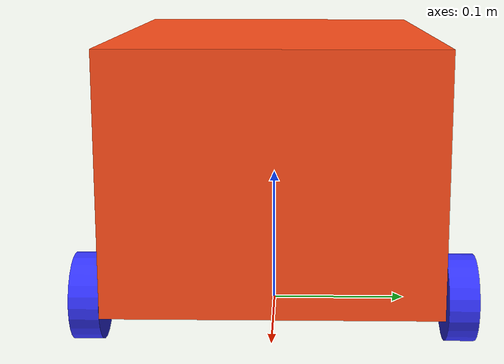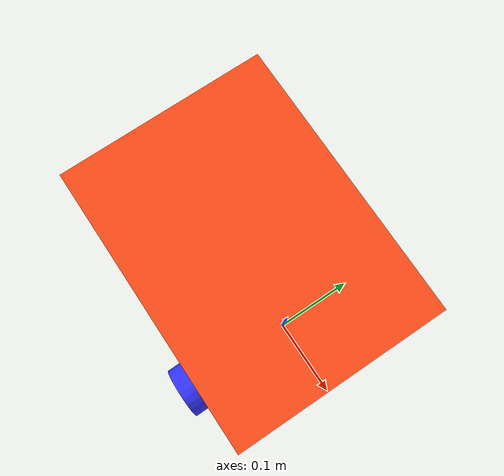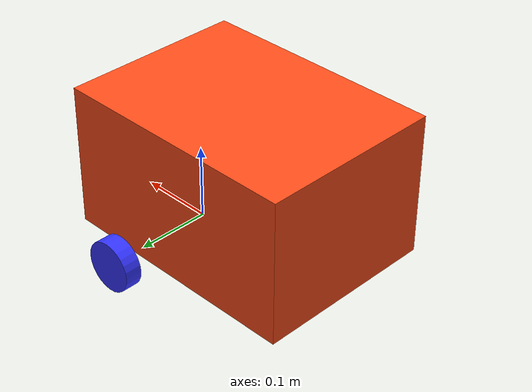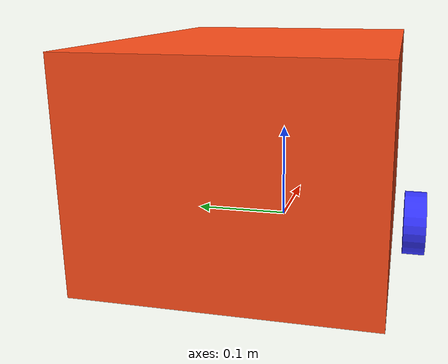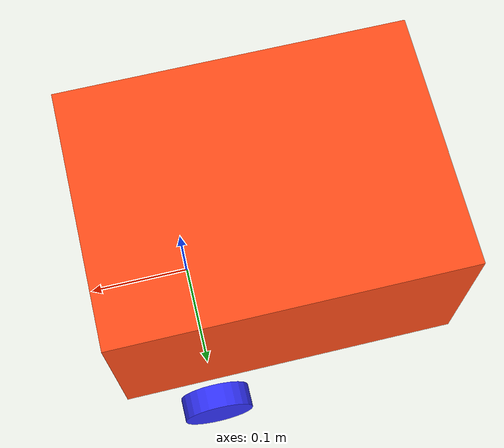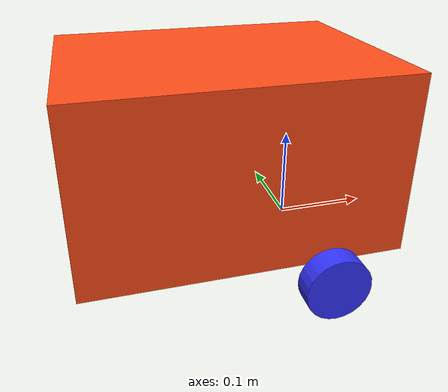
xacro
<?xml version="1.0"?>
<robot xmlns:xacro="http://www.ros.org/wiki/xacro" >

    <xacro:include filename="inertial_macros.xacro"/>

    <xacro:property name="chassis_length" value="0.33"/>     <!-- front edge to back edge -->
    <xacro:property name="chassis_width" value="0.244"/>     <!-- without the wheels -->
    <xacro:property name="chassis_height" value="0.19"/>     <!-- board bottom 0.046 to box top 0.236 above the floor -->
    <xacro:property name="chassis_mass" value="1.0"/>
    <xacro:property name="wheel_radius" value="0.034"/>      <!-- 70 mm wheels; 0.034 matched a 1 m tape test under load -->
    <xacro:property name="wheel_thickness" value="0.023"/>
    <xacro:property name="wheel_mass" value="0.05"/>
    <xacro:property name="wheel_offset_x" value="0.245"/>    <!-- axle to the BACK edge (axle is 0.085 from the front) -->
    <xacro:property name="wheel_offset_y" value="0.144"/>    <!-- half of 0.288, tyre centre to tyre centre -->
    <xacro:property name="chassis_bottom_z" value="0.011"/>  <!-- board bottom above the axle: 0.046 floor-to-board minus 0.035 -->
    <xacro:property name="caster_wheel_radius" value="0.0105"/>  <!-- 21 mm swivel caster -->
    <xacro:property name="caster_wheel_mass" value="0.01"/>
    <xacro:property name="caster_wheel_offset_x" value="0.080"/> <!-- from the back edge: 0.165 behind the axle -->
    <xacro:property name="caster_wheel_offset_z" value="${-wheel_radius + caster_wheel_radius - chassis_bottom_z}"/>
    <material name="white">
        <color rgba="1 1 1 1" />
    </material>

    <material name="orange">
        <color rgba="1 0.3 0.1 1"/>
    </material>

    <material name="blue">
        <color rgba="0.2 0.2 1 1"/>
    </material>

    <material name="black">
        <color rgba="0 0 0 1"/>
    </material>

    <material name="red">
        <color rgba="1 0 0 1"/>
    </material>

    <!-- BASE LINK -->

    <link name="base_link">

    </link>

    <!-- BASE_FOOTPRINT LINK -->

    <joint name="base_footprint_joint" type="fixed">
        <parent link="base_link"/>
        <child link="base_footprint"/>
        <origin xyz="0 0 0" rpy="0 0 0"/>
    </joint>

    <link name="base_footprint">
    </link>

    <!-- CHASSIS LINK -->

    <joint name="chassis_joint" type="fixed">
        <parent link="base_link"/>
        <child link="chassis"/>
        <origin xyz="${-wheel_offset_x} 0 ${chassis_bottom_z}"/>
    </joint>

    <link name="chassis">
        <visual>
            <origin xyz="${chassis_length/2} 0 ${chassis_height/2}"/>
            <geometry>
                <box size="${chassis_length} ${chassis_width} ${chassis_height}"/>
            </geometry>
            <material name="orange"/>
        </visual>
        <collision>
            <origin xyz="${chassis_length/2} 0 ${chassis_height/2}"/>
            <geometry>
                <box size="${chassis_length} ${chassis_width} ${chassis_height}"/>
            </geometry>
        </collision>
        <xacro:inertial_box mass="0.5" x="${chassis_length}" y="${chassis_width}" z="${chassis_height}">
            <origin xyz="${chassis_length/2} 0 ${chassis_height/2}" rpy="0 0 0"/>
        </xacro:inertial_box>
    </link>

    <gazebo reference="chassis">
        <material>Gazebo/Orange</material>
    </gazebo>

    <!-- LEFT WHEEL LINK -->

    <joint name="left_wheel_joint" type="continuous">
        <parent link="base_link"/>
        <child link="left_wheel"/>
        <origin xyz="0 ${wheel_offset_y} 0" rpy="-${pi/2} 0 0" />
        <axis xyz="0 0 1"/>
    </joint>

    <link name="left_wheel">
        <visual>
            <geometry>
                <cylinder radius="${wheel_radius}" length="${wheel_thickness}"/>
            </geometry>
            <material name="blue"/>
        </visual>
        <collision>
            <geometry>
                <sphere radius="${wheel_radius}"/>
            </geometry>
        </collision>
        <xacro:inertial_cylinder mass="${wheel_mass}" length="${wheel_thickness}" radius="${wheel_radius}">
            <origin xyz="0 0 0" rpy="0 0 0"/>
        </xacro:inertial_cylinder>
    </link>

    <gazebo reference="left_wheel">
        <material>Gazebo/Blue</material>
    </gazebo>

    <!-- RIGHT WHEEL LINK -->

    <joint name="right_wheel_joint" type="continuous">
        <parent link="base_link"/>
        <child link="right_wheel"/>
        <origin xyz="0 ${-wheel_offset_y} 0" rpy="${pi/2} 0 0" />
        <axis xyz="0 0 -1"/>
    </joint>

    <link name="right_wheel">
        <visual>
            <geometry>
                <cylinder radius="${wheel_radius}" length="${wheel_thickness}"/>
            </geometry>
            <material name="blue"/>
        </visual>
        <collision>
            <geometry>
                <sphere radius="${wheel_radius}"/>
            </geometry>
        </collision>
        <xacro:inertial_cylinder mass="${wheel_mass}" length="${wheel_thickness}" radius="${wheel_radius}">
            <origin xyz="0 0 0" rpy="0 0 0"/>
        </xacro:inertial_cylinder>
    </link>

    <gazebo reference="right_wheel">
        <material>Gazebo/Blue</material>
    </gazebo>

    <!-- CASTER WHEEL LINK -->

    <joint name="caster_wheel_joint" type="fixed">
        <parent link="chassis"/>
        <child link="caster_wheel"/>
        <origin xyz="${caster_wheel_offset_x} 0 ${caster_wheel_offset_z}"/>
    </joint>

    <link name="caster_wheel">
        <visual>
            <geometry>
                <sphere radius="${caster_wheel_radius}"/>
            </geometry>
            <material name="white"/>
        </visual>
        <collision>
            <geometry>
                <sphere radius="${caster_wheel_radius}"/>
            </geometry>
        </collision>
        <xacro:inertial_sphere mass="${caster_wheel_mass}" radius="${caster_wheel_radius}">
            <origin xyz="0 0 0" rpy="0 0 0"/>
        </xacro:inertial_sphere>
    </link>

    <gazebo reference="caster_wheel">
        <material>Gazebo/White</material>
        <mu1 value="0.001"/>
        <mu2 value="0.001"/>
    </gazebo>

</robot>
